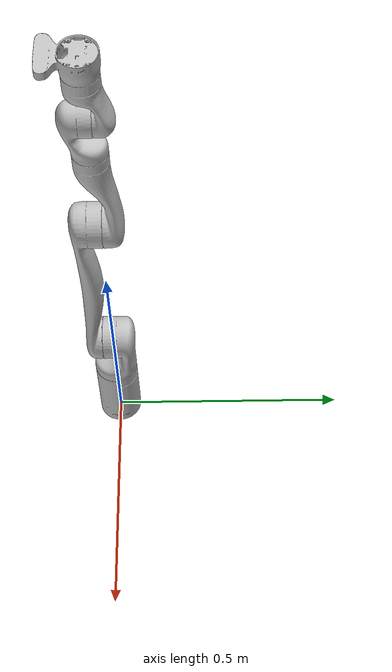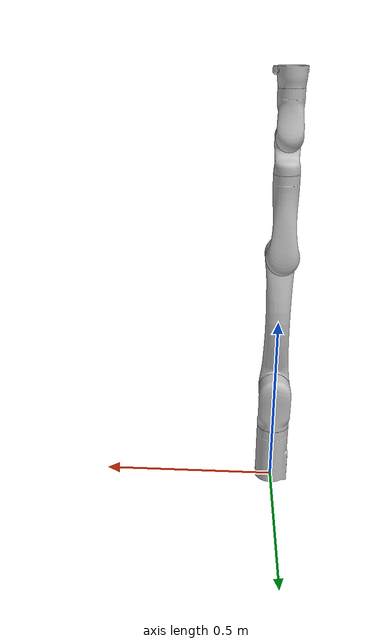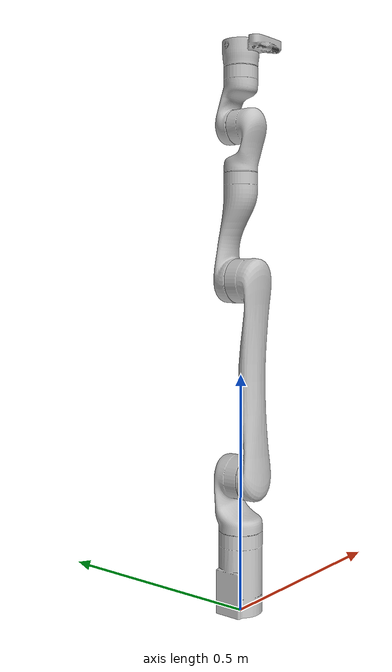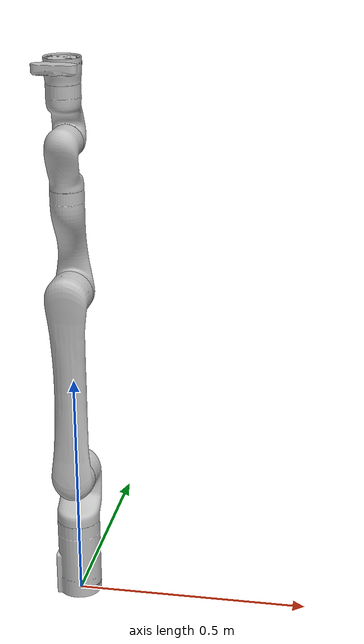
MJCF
<mujoco model="GEN3-6DOF_VISION_URDF_ARM_V01">
    <compiler angle="radian" />
    <size njmax="500" nconmax="100" />

    <!-- 이 부분 추가 -->
    <visual>
        <headlight ambient=".4 .4 .4" diffuse=".8 .8 .8" specular="0.1 0.1 0.1"/>
        <rgba haze=".3 .3 .3 1"/>
    </visual>

    <asset>
        <mesh name="base_link" file="../meshes/base_link.STL" />
        <mesh name="shoulder_link" file="../meshes/shoulder_link.STL" />
        <mesh name="bicep_link" file="../meshes/bicep_link.STL" />
        <mesh name="forearm_link" file="../meshes/forearm_link.STL" />
        <mesh name="spherical_wrist_1_link" file="../meshes/spherical_wrist_1_link.STL" />
        <mesh name="spherical_wrist_2_link" file="../meshes/spherical_wrist_2_link.STL" />
        <mesh name="bracelet_with_vision_link" file="../meshes/bracelet_with_vision_link.STL" />

        <!-- 이 부분 추가 -->
        <texture type="skybox" builtin="gradient" rgb1=".4 .6 .8" rgb2="0 0 0" width="512" height="512"/>

    </asset>
    <worldbody>
        <geom type="mesh" rgba="0.75294 0.75294 0.75294 1" mesh="base_link" />
        <body name="Shoulder_Link" pos="0 0 0.15643" quat="-3.67321e-06 -1 0 0">
            <inertial pos="-2.3e-05 -0.010364 -0.07336" quat="0.707051 0.0451246 -0.0453544 0.704263" mass="1.377" diaginertia="0.00488868 0.00457 0.00135132" />
            <joint name="Actuator1" pos="0 0 0" axis="0 0 1" limited="true" range="-3.14 3.14" damping="3" frictionloss="5.5" />
            <geom type="mesh" rgba="0.75294 0.75294 0.75294 1" mesh="shoulder_link" />
            <body name="Bicep_Link" pos="0 0.005375 -0.12838" quat="0.707105 0.707108 0 0">
                <inertial pos="3.5e-05 -0.208207 -0.01889" quat="0.499531 0.50049 -0.500566 0.499411" mass="1.262" diaginertia="0.0471882 0.046752 0.000849791" />
                <joint name="Actuator2" pos="0 0 0" axis="0 0 1" limited="true" range="-2.41 2.41" damping="3" frictionloss="5.5" />
                <geom type="mesh" rgba="0.75294 0.75294 0.75294 1" mesh="bicep_link" />
                <body name="ForeArm_Link" pos="0 -0.41 0" quat="-3.67321e-06 1 0 0">
                    <inertial pos="1.8e-05 0.076168 -0.01397" quat="0.513497 0.485985 -0.486188 0.513577" mass="0.93" diaginertia="0.00848774 0.008292 0.000604256" />
                    <joint name="Actuator3" pos="0 0 0" axis="0 0 1" limited="true" range="-2.66 2.66" damping="3" frictionloss="5.5"/>
                    <geom type="mesh" rgba="0.75294 0.75294 0.75294 1" mesh="forearm_link" />
                    <body name="SphericalWrist1_Link" pos="0 0.20843 -0.006375" quat="0.707105 0.707108 0 0">
                        <inertial pos="-1e-06 0.008486 -0.062937" quat="0.704382 -0.062019 0.062019 0.704382" mass="0.6781" diaginertia="0.00170753 0.001645 0.000347472" />
                        <joint name="Actuator4" pos="0 0 0" axis="0 0 1" limited="true" range="-3.14 3.14" damping="3" frictionloss="5.5"/>
                        <geom type="mesh" rgba="0.75294 0.75294 0.75294 1" mesh="spherical_wrist_1_link" />
                        <body name="SphericalWrist2_Link" pos="0 -0.00017505 -0.10593" quat="0.707105 -0.707108 0 0">
                            <inertial pos="-1e-06 0.046429 -0.008704" quat="0.5446 0.451011 -0.451011 0.5446" mass="0.678" diaginertia="0.00174437 0.001685 0.000351632" />
                            <joint name="Actuator5" pos="0 0 0" axis="0 0 1" limited="true" range="-2.23 2.23" damping="3" frictionloss="5.5"/>
                            <geom type="mesh" rgba="0.75294 0.75294 0.75294 1" mesh="spherical_wrist_2_link" />
                            <body name="Bracelet_Link" pos="0 0.10593 -0.00017505" quat="0.707105 0.707108 0 0">
                                <inertial pos="0.000281 0.011402 -0.029798" quat="0.394358 0.596779 -0.577293 0.393789" mass="0.5" diaginertia="0.000657336 0.000587019 0.000320645" />
                                <joint name="Actuator6" pos="0 0 0" axis="0 0 1" limited="true" range="-3.14 3.14" damping="3" frictionloss="5.5"/>
                                <geom type="mesh" rgba="0.75294 0.75294 0.75294 1" mesh="bracelet_with_vision_link" />
                            </body>
                        </body>
                    </body>
                </body>
            </body>
        </body>
    </worldbody>
    <actuator>
        <position name="Actuator1" joint="Actuator1" />
        <position name="Actuator2" joint="Actuator2" />
        <position name="Actuator3" joint="Actuator3" />
        <position name="Actuator4" joint="Actuator4" />
        <position name="Actuator5" joint="Actuator5" />
        <position name="Actuator6" joint="Actuator6" />

    </actuator>
</mujoco>
